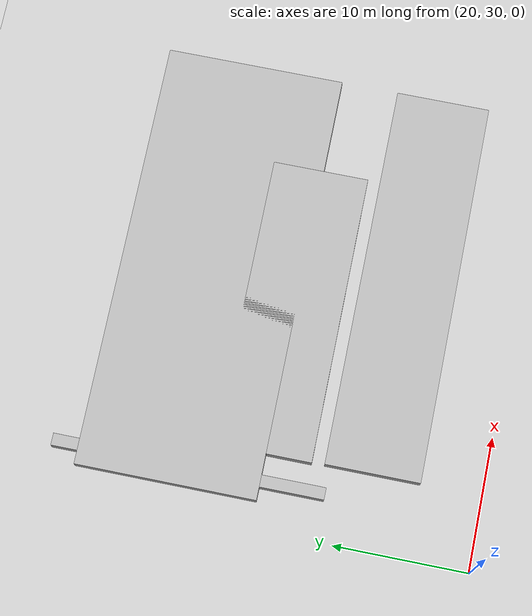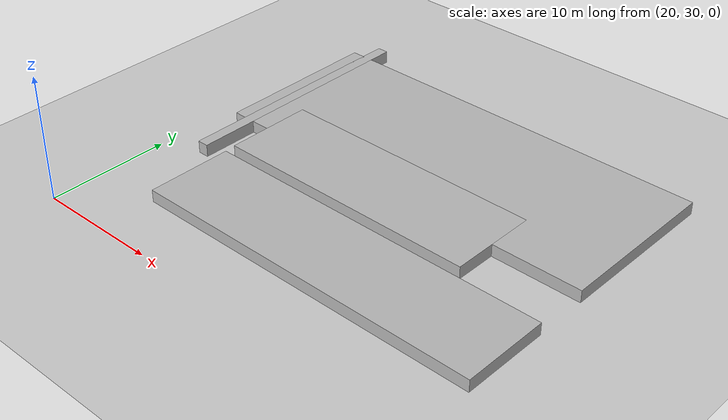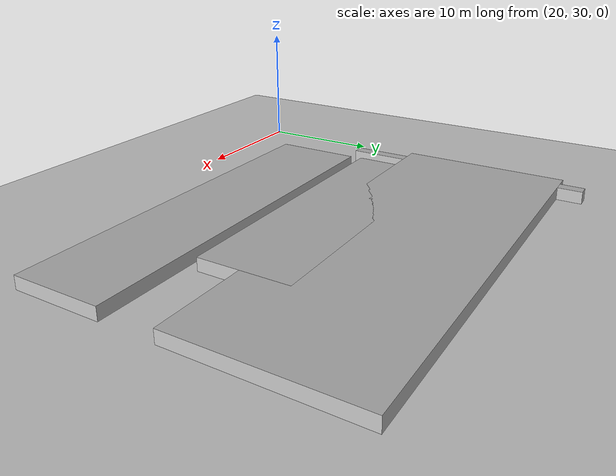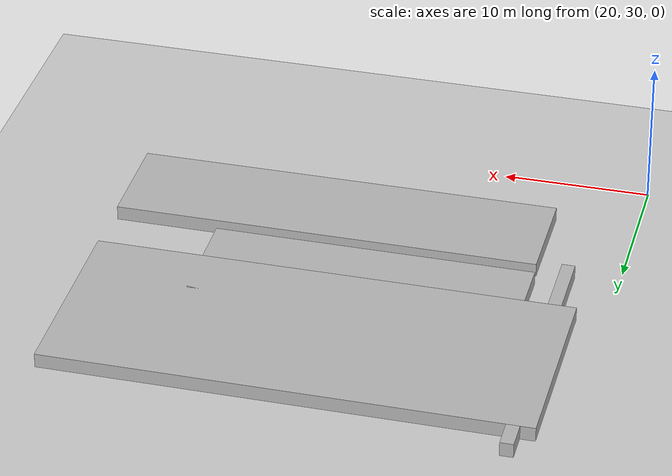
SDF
<?xml version="1.0"?>
<sdf version="1.5">
  <world name="default">
    <include>
      <uri>model://ground_plane</uri>
    </include>
    <include>
      <uri>model://sun</uri>
    </include>
    <model name="wall_1">
      <pose>38.32500100000001 52.675001 0.5 0 0 0</pose>
      <static>true</static>
      <link name="link">
        <collision name="collision">
          <geometry>
            <box><size>32.65 13.450000000000001 1</size></box>
          </geometry>
        </collision>
        <visual name="visual">
          <geometry>
            <box><size>32.65 13.450000000000001 1</size></box>
          </geometry>
        </visual>
      </link>
    </model>
    <model name="wall_2">
      <pose>23.450001 51.27500100000001 0.5 0 0 0</pose>
      <static>true</static>
      <link name="link">
        <collision name="collision">
          <geometry>
            <box><size>0.9 20.150000000000002 1</size></box>
          </geometry>
        </collision>
        <visual name="visual">
          <geometry>
            <box><size>0.9 20.150000000000002 1</size></box>
          </geometry>
        </visual>
      </link>
    </model>
    <model name="wall_3">
      <pose>36.400001 46.175001 0.5 0 0 0</pose>
      <static>true</static>
      <link name="link">
        <collision name="collision">
          <geometry>
            <box><size>21.900000000000002 7.2 1</size></box>
          </geometry>
        </collision>
        <visual name="visual">
          <geometry>
            <box><size>21.900000000000002 7.2 1</size></box>
          </geometry>
        </visual>
      </link>
    </model>
    <model name="wall_4">
      <pose>40.100001000000006 38.125001000000005 0.5 0 0 0</pose>
      <static>true</static>
      <link name="link">
        <collision name="collision">
          <geometry>
            <box><size>29.1 7.050000000000001 1</size></box>
          </geometry>
        </collision>
        <visual name="visual">
          <geometry>
            <box><size>29.1 7.050000000000001 1</size></box>
          </geometry>
        </visual>
      </link>
    </model>
  </world>
</sdf>
